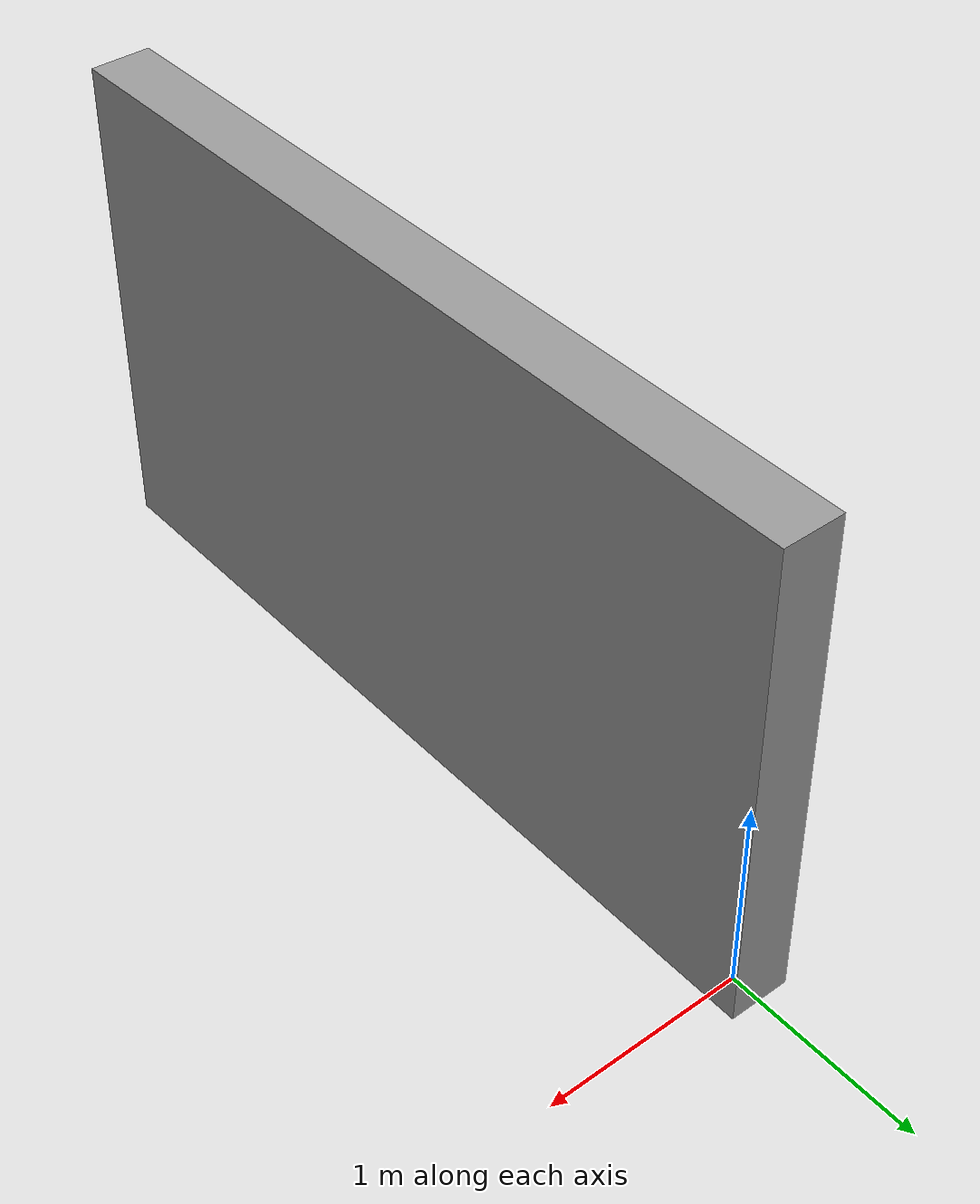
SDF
<?xml version='1.0'?>
<sdf version='1.6'>
  <model name='wall_4_03'>
    <pose frame=''>0 -2 0 0 -0 0</pose>
    <link name='Wall_14'>
      <collision name='Wall_14_Collision'>
        <geometry>
          <box>
            <size>4.3 0.3 2.5</size>
          </box>
        </geometry>
        <pose frame=''>0 0 1.25 0 -0 0</pose>
      </collision>
      <visual name='Wall_14_Visual'>
        <pose frame=''>0 0 1.25 0 -0 0</pose>
        <geometry>
          <box>
            <size>4.3 0.3 2.5</size>
          </box>
        </geometry>
        <material>
          <script>
            <uri>file://media/materials/scripts/gazebo.material</uri>
            <name>Gazebo/Grey</name>
          </script>
          <ambient>1 1 1 1</ambient>
        </material>
        <meta>
          <layer>0</layer>
        </meta>
      </visual>
      <pose frame=''>0 0 0 0 -0 -1.5708</pose>
    </link>
    <static>1</static>
  </model>
</sdf>
